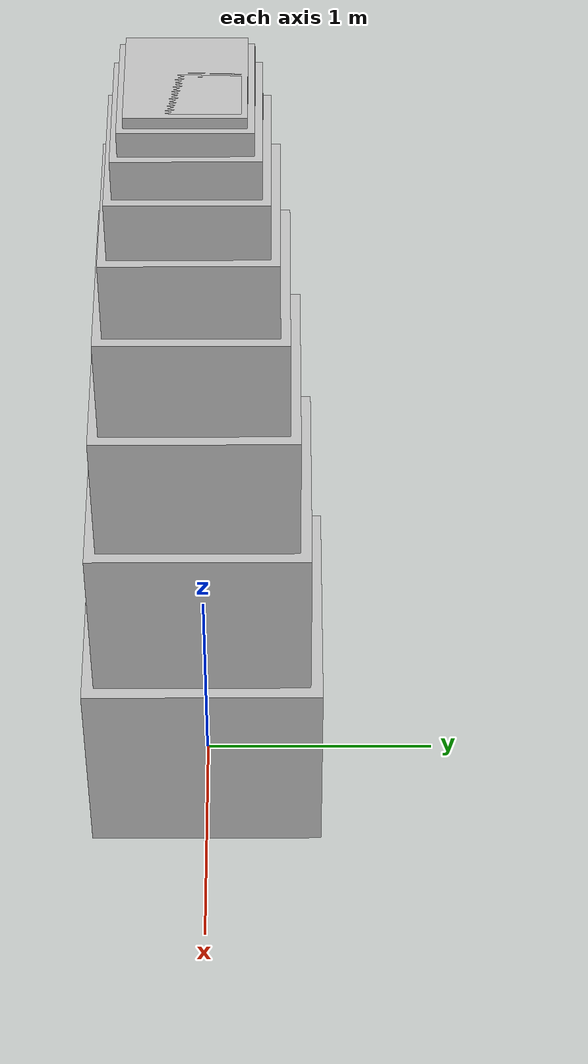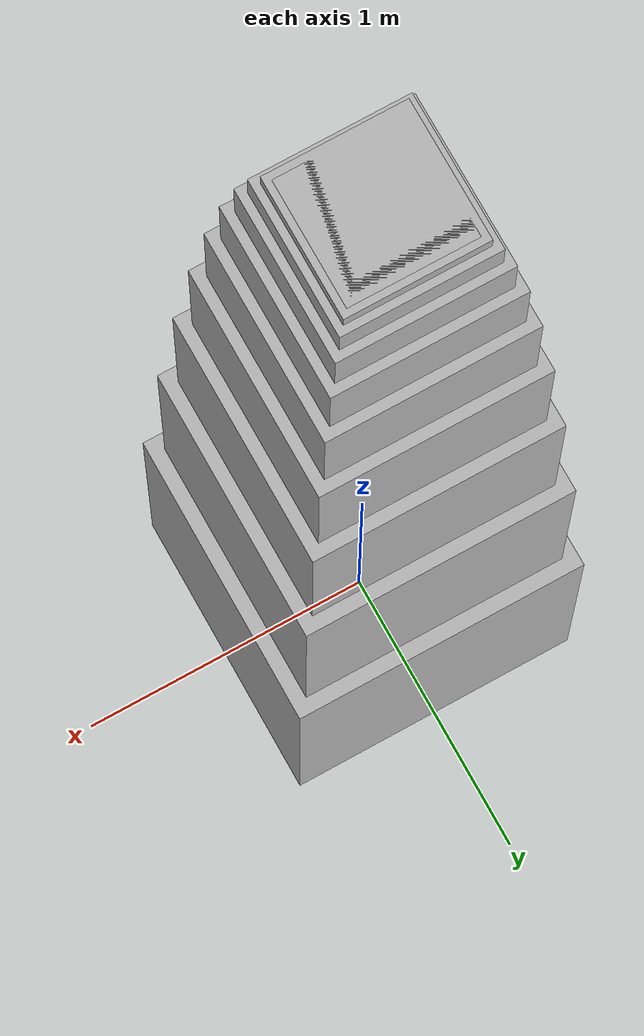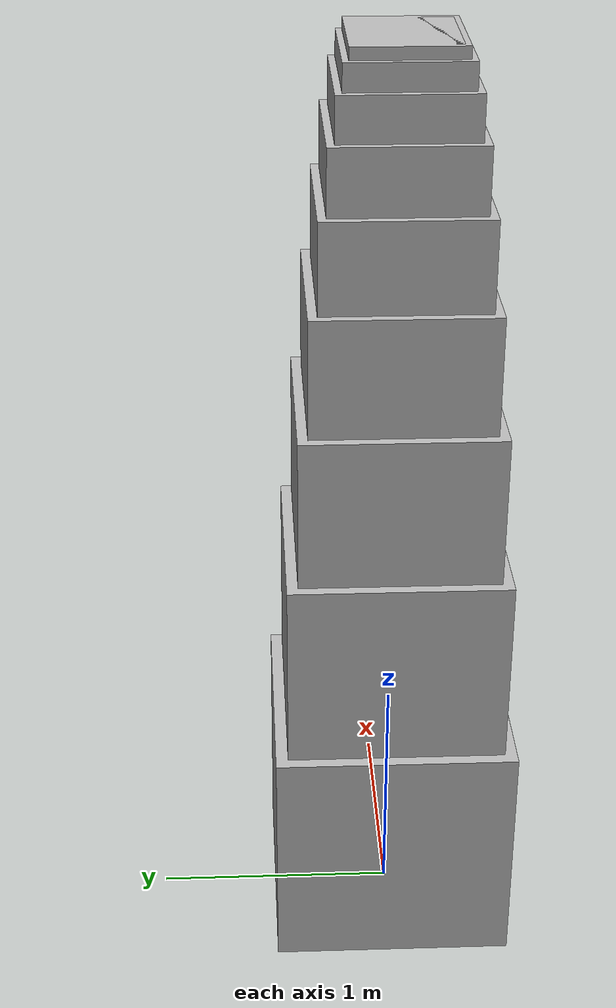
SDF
<sdf version="1.6">
  <world name="default">
    <model name="Block0">
      <static>false</static>
      <link name="Block0Link">
        <pose>0 0 0.5 0 0 0</pose>
        <collision name="collision">
          <geometry>
            <box><size>1 1 1</size></box>
          </geometry>
        </collision>
        <visual name="visual">
          <geometry>
            <box><size>1 1 1</size></box>
          </geometry>
        </visual>
        <inertial>
          <mass>1</mass>
          <inertia>
            <ixx>0.16666667</ixx>
            <iyy>0.16666667</iyy>
            <izz>0.16666667</izz>
            <ixy>0</ixy><ixz>0</ixz><iyz>0</iyz>
          </inertia>
        </inertial>
      </link>
    </model>
    <model name="Block1">
      <static>false</static>
      <link name="Block1Link">
        <pose>0 0 1.35 0 0 0</pose>
        <collision name="collision">
          <geometry>
            <box><size>0.9 0.9 0.9</size></box>
          </geometry>
        </collision>
        <visual name="visual">
          <geometry>
            <box><size>0.9 0.9 0.9</size></box>
          </geometry>
        </visual>
        <inertial>
          <mass>1</mass>
          <inertia>
            <ixx>0.16666667</ixx>
            <iyy>0.16666667</iyy>
            <izz>0.16666667</izz>
            <ixy>0</ixy><ixz>0</ixz><iyz>0</iyz>
          </inertia>
        </inertial>
      </link>
    </model>
    <model name="Block2">
      <static>false</static>
      <link name="Block2Link">
        <pose>0 0 2.0250000000000004 0 0 0</pose>
        <collision name="collision">
          <geometry>
            <box><size>0.81 0.81 0.81</size></box>
          </geometry>
        </collision>
        <visual name="visual">
          <geometry>
            <box><size>0.81 0.81 0.81</size></box>
          </geometry>
        </visual>
        <inertial>
          <mass>1</mass>
          <inertia>
            <ixx>0.16666667</ixx>
            <iyy>0.16666667</iyy>
            <izz>0.16666667</izz>
            <ixy>0</ixy><ixz>0</ixz><iyz>0</iyz>
          </inertia>
        </inertial>
      </link>
    </model>
    <model name="Block3">
      <static>false</static>
      <link name="Block3Link">
        <pose>0 0 2.5515000000000003 0 0 0</pose>
        <collision name="collision">
          <geometry>
            <box><size>0.7290000000000001 0.7290000000000001 0.7290000000000001</size></box>
          </geometry>
        </collision>
        <visual name="visual">
          <geometry>
            <box><size>0.7290000000000001 0.7290000000000001 0.7290000000000001</size></box>
          </geometry>
        </visual>
        <inertial>
          <mass>1</mass>
          <inertia>
            <ixx>0.16666667</ixx>
            <iyy>0.16666667</iyy>
            <izz>0.16666667</izz>
            <ixy>0</ixy><ixz>0</ixz><iyz>0</iyz>
          </inertia>
        </inertial>
      </link>
    </model>
    <model name="Block4">
      <static>false</static>
      <link name="Block4Link">
        <pose>0 0 2.9524500000000007 0 0 0</pose>
        <collision name="collision">
          <geometry>
            <box><size>0.6561000000000001 0.6561000000000001 0.6561000000000001</size></box>
          </geometry>
        </collision>
        <visual name="visual">
          <geometry>
            <box><size>0.6561000000000001 0.6561000000000001 0.6561000000000001</size></box>
          </geometry>
        </visual>
        <inertial>
          <mass>1</mass>
          <inertia>
            <ixx>0.16666667</ixx>
            <iyy>0.16666667</iyy>
            <izz>0.16666667</izz>
            <ixy>0</ixy><ixz>0</ixz><iyz>0</iyz>
          </inertia>
        </inertial>
      </link>
    </model>
    <model name="Block5">
      <static>false</static>
      <link name="Block5Link">
        <pose>0 0 3.2476950000000007 0 0 0</pose>
        <collision name="collision">
          <geometry>
            <box><size>0.5904900000000002 0.5904900000000002 0.5904900000000002</size></box>
          </geometry>
        </collision>
        <visual name="visual">
          <geometry>
            <box><size>0.5904900000000002 0.5904900000000002 0.5904900000000002</size></box>
          </geometry>
        </visual>
        <inertial>
          <mass>1</mass>
          <inertia>
            <ixx>0.16666667</ixx>
            <iyy>0.16666667</iyy>
            <izz>0.16666667</izz>
            <ixy>0</ixy><ixz>0</ixz><iyz>0</iyz>
          </inertia>
        </inertial>
      </link>
    </model>
    <model name="Block6">
      <static>false</static>
      <link name="Block6Link">
        <pose>0 0 3.4543665000000012 0 0 0</pose>
        <collision name="collision">
          <geometry>
            <box><size>0.5314410000000002 0.5314410000000002 0.5314410000000002</size></box>
          </geometry>
        </collision>
        <visual name="visual">
          <geometry>
            <box><size>0.5314410000000002 0.5314410000000002 0.5314410000000002</size></box>
          </geometry>
        </visual>
        <inertial>
          <mass>1</mass>
          <inertia>
            <ixx>0.16666667</ixx>
            <iyy>0.16666667</iyy>
            <izz>0.16666667</izz>
            <ixy>0</ixy><ixz>0</ixz><iyz>0</iyz>
          </inertia>
        </inertial>
      </link>
    </model>
    <model name="Block7">
      <static>false</static>
      <link name="Block7Link">
        <pose>0 0 3.587226750000001 0 0 0</pose>
        <collision name="collision">
          <geometry>
            <box><size>0.47829690000000014 0.47829690000000014 0.47829690000000014</size></box>
          </geometry>
        </collision>
        <visual name="visual">
          <geometry>
            <box><size>0.47829690000000014 0.47829690000000014 0.47829690000000014</size></box>
          </geometry>
        </visual>
        <inertial>
          <mass>1</mass>
          <inertia>
            <ixx>0.16666667</ixx>
            <iyy>0.16666667</iyy>
            <izz>0.16666667</izz>
            <ixy>0</ixy><ixz>0</ixz><iyz>0</iyz>
          </inertia>
        </inertial>
      </link>
    </model>
    <model name="Block8">
      <static>false</static>
      <link name="Block8Link">
        <pose>0 0 3.658971285000001 0 0 0</pose>
        <collision name="collision">
          <geometry>
            <box><size>0.43046721000000016 0.43046721000000016 0.43046721000000016</size></box>
          </geometry>
        </collision>
        <visual name="visual">
          <geometry>
            <box><size>0.43046721000000016 0.43046721000000016 0.43046721000000016</size></box>
          </geometry>
        </visual>
        <inertial>
          <mass>1</mass>
          <inertia>
            <ixx>0.16666667</ixx>
            <iyy>0.16666667</iyy>
            <izz>0.16666667</izz>
            <ixy>0</ixy><ixz>0</ixz><iyz>0</iyz>
          </inertia>
        </inertial>
      </link>
    </model>
    <model name="Block9">
      <static>false</static>
      <link name="Block9Link">
        <pose>0 0 3.6804946455000014 0 0 0</pose>
        <collision name="collision">
          <geometry>
            <box><size>0.38742048900000015 0.38742048900000015 0.38742048900000015</size></box>
          </geometry>
        </collision>
        <visual name="visual">
          <geometry>
            <box><size>0.38742048900000015 0.38742048900000015 0.38742048900000015</size></box>
          </geometry>
        </visual>
        <inertial>
          <mass>1</mass>
          <inertia>
            <ixx>0.16666667</ixx>
            <iyy>0.16666667</iyy>
            <izz>0.16666667</izz>
            <ixy>0</ixy><ixz>0</ixz><iyz>0</iyz>
          </inertia>
        </inertial>
      </link>
    </model>
  </world>
</sdf>
